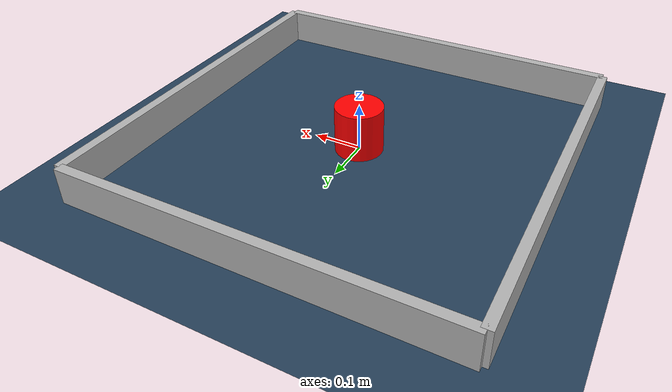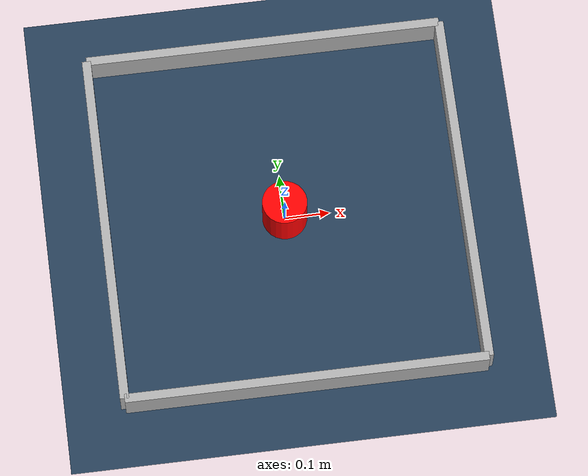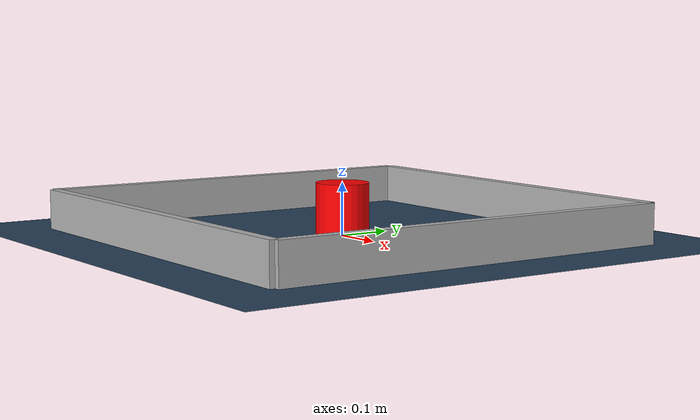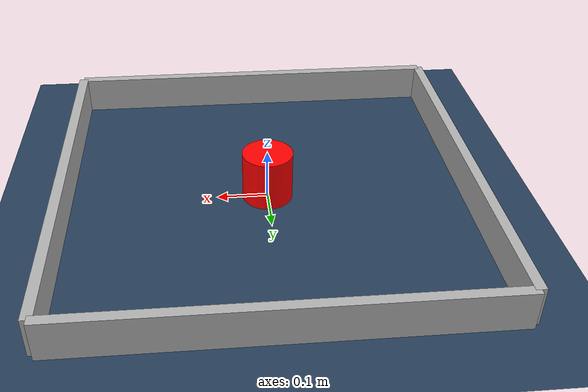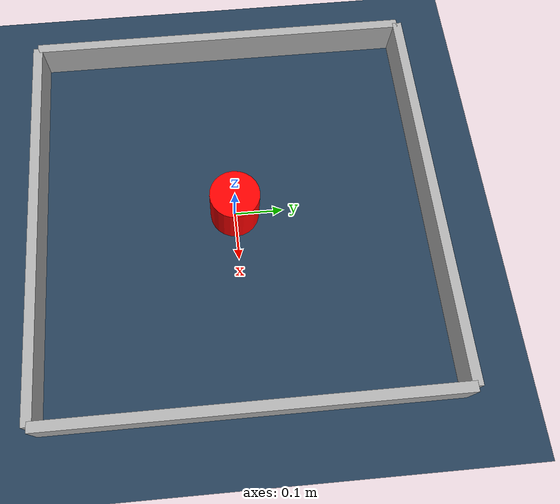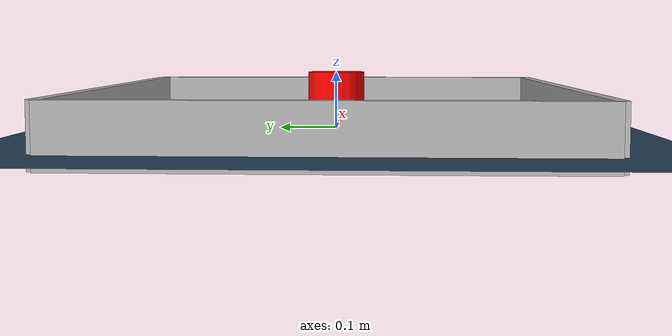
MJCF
<mujoco model="multicube_simulation">
        <compiler angle="degree" coordinate="local"/>
        <option timestep="0.001" gravity="0 0 0"/>

        <worldbody>
            <!-- Ground plane -->
            <geom name="floor" size="0 0 0.05" type="plane" material="groundplane"/>

            <!-- Walls to enclose the space -->
            <!-- Wall at x = -0.4 -->
            <body name="wall_x_neg" pos="-0.4 0 0.025">
                <geom name="wall_x_neg_geom" type="box" size="0.01 0.4 0.05" rgba="0.7 0.7 0.7 1" contype="1" conaffinity="1"/>
                <inertial pos="0 0 0" mass="100.0" diaginertia="10 10 10"/>
            </body>

            <!-- Wall at x = 0.4 -->
            <body name="wall_x_pos" pos="0.4 0 0.025">
                <geom name="wall_x_pos_geom" type="box" size="0.01 0.4 0.05" rgba="0.7 0.7 0.7 1" contype="1" conaffinity="1"/>
                <inertial pos="0 0 0" mass="100.0" diaginertia="10 10 10"/>
            </body>

            <!-- Wall at y = -0.4 -->
            <body name="wall_y_neg" pos="0 -0.4 0.025">
                <geom name="wall_y_neg_geom" type="box" size="0.4 0.01 0.05" rgba="0.7 0.7 0.7 1" contype="1" conaffinity="1"/>
                <inertial pos="0 0 0" mass="100.0" diaginertia="10 10 10"/>
            </body>

            <!-- Wall at y = 0.4 -->
            <body name="wall_y_pos" pos="0 0.4 0.025">
                <geom name="wall_y_pos_geom" type="box" size="0.4 0.01 0.05" rgba="0.7 0.7 0.7 1" contype="1" conaffinity="1"/>
                <inertial pos="0 0 0" mass="100.0" diaginertia="10 10 10"/>
            </body>

    <body name="object" pos="0 0 0.05">
        <geom name="cylinder" type="cylinder" size="0.05 0.05 0.05" rgba="1 0 0 1" contype="1" conaffinity="1"/>
        <joint name="object_free_joint" type="free" />
        <inertial pos="0 0 0" mass="100.0" diaginertia="10 10 10"/>
    </body>

            <!-- Floating spotlight -->
            <body name="spotlight_body" pos="0.35 0.35 0.5">
                <joint name="spotlight_free_joint" type="free" />
                <light name="spotlight" pos="0 0 0" dir="0 0 -1" diffuse="1 1 1" specular="0.5 0.5 0.5" cutoff="45" exponent="10" directional="false"/>
                <camera name="spotlight_camera" pos="0 0 0.1" mode="trackcom"/>
                <inertial pos="0 0 0" mass="0.01" diaginertia="0.001 0.001 0.001"/>
            </body>

            <!-- Camera -->
            <camera name="fixed" pos="0 0 3" zaxis="0 0 1"/>
        </worldbody>

        <asset>
            <texture type="skybox" builtin="gradient" rgb1="0.3 0.5 0.7" rgb2="0 0 0" width="512" height="3072"/>
            <texture type="2d" name="groundplane" builtin="checker" mark="edge" rgb1="0.2 0.3 0.4" rgb2="0.1 0.2 0.3"
            markrgb="0.8 0.8 0.8" width="300" height="300"/>
            <material name="groundplane" texture="groundplane" texuniform="true" texrepeat="5 5" reflectance="0.2"/>
        </asset>

        <visual>
            <map znear="0.1" zfar="50"/>
        </visual>
    </mujoco>
